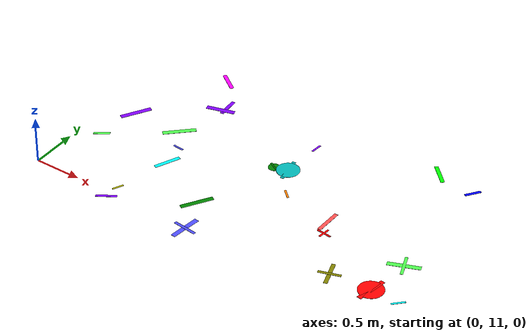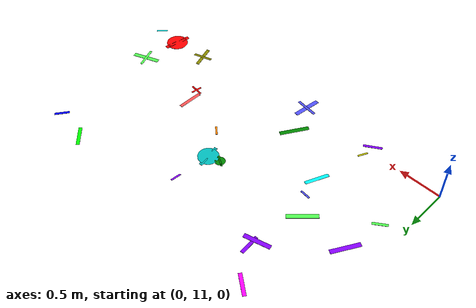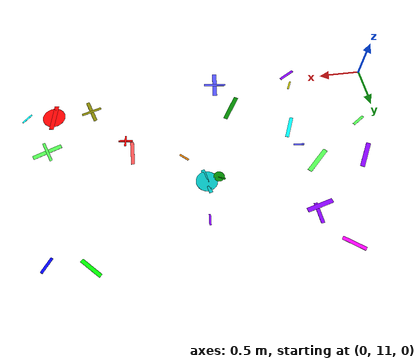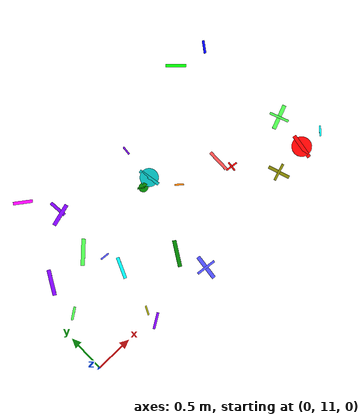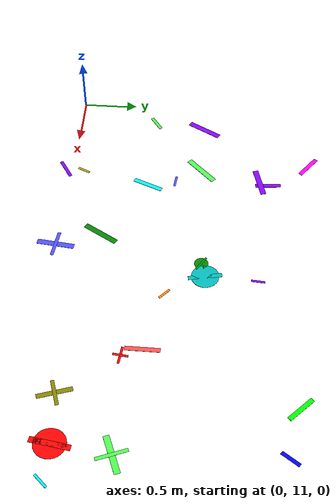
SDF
<sdf version="1.6">
 <world name="default">
  <model name="letter_R_1184">
   <static>true</static>
   <pose>0.23 11.72 0.005 0 0 3.740</pose>
   <link name="link">
    <visual name="visual">
     <geometry><box><size>0.17 0.03 0.002</size></box></geometry>
     <material>
      <ambient>0.3 1.0 0.3 1</ambient>
      <diffuse>0.3 1.0 0.3 1</diffuse>
      <specular>0.1 0.1 0.1 1</specular>
     </material>
    </visual>
   </link>
  </model>
  <model name="letter_K_1185">
   <static>true</static>
   <pose>0.30 12.19 0.012 0 0 1.046</pose>
   <link name="link">
    <visual name="visual">
     <geometry><box><size>0.33 0.05 0.002</size></box></geometry>
     <material>
      <ambient>0.5 0.0 1.0 1</ambient>
      <diffuse>0.5 0.0 1.0 1</diffuse>
      <specular>0.1 0.1 0.1 1</specular>
     </material>
    </visual>
   </link>
  </model>
  <model name="letter_S_1237">
   <static>true</static>
   <pose>0.91 10.93 0.006 0 0 0.553</pose>
   <link name="link">
    <visual name="visual">
     <geometry><box><size>0.21 0.03 0.002</size></box></geometry>
     <material>
      <ambient>0.5 0.0 1.0 1</ambient>
      <diffuse>0.5 0.0 1.0 1</diffuse>
      <specular>0.1 0.1 0.1 1</specular>
     </material>
    </visual>
   </link>
  </model>
  <model name="letter_B_1239">
   <static>true</static>
   <pose>0.92 11.10 0.012 0 0 4.268</pose>
   <link name="link">
    <visual name="visual">
     <geometry><box><size>0.12 0.02 0.002</size></box></geometry>
     <material>
      <ambient>0.7 0.7 0.0 1</ambient>
      <diffuse>0.7 0.7 0.0 1</diffuse>
      <specular>0.1 0.1 0.1 1</specular>
     </material>
    </visual>
   </link>
  </model>
  <model name="letter_Y_1240">
   <static>true</static>
   <pose>1.06 11.71 0.004 0 0 1.162</pose>
   <link name="link">
    <visual name="visual">
     <geometry><box><size>0.28 0.04 0.002</size></box></geometry>
     <material>
      <ambient>0.0 1.0 1.0 1</ambient>
      <diffuse>0.0 1.0 1.0 1</diffuse>
      <specular>0.1 0.1 0.1 1</specular>
     </material>
    </visual>
   </link>
  </model>
  <model name="letter_W_1241">
   <static>true</static>
   <pose>0.85 12.19 0.008 0 0 0.771</pose>
   <link name="link">
    <visual name="visual">
     <geometry><box><size>0.34 0.05 0.002</size></box></geometry>
     <material>
      <ambient>0.3 1.0 0.3 1</ambient>
      <diffuse>0.3 1.0 0.3 1</diffuse>
      <specular>0.1 0.1 0.1 1</specular>
     </material>
    </visual>
   </link>
  </model>
  <model name="letter_W_1242">
   <static>true</static>
   <pose>1.01 11.96 0.012 0 0 3.045</pose>
   <link name="link">
    <visual name="visual">
     <geometry><box><size>0.12 0.02 0.002</size></box></geometry>
     <material>
      <ambient>0.3 0.3 1.0 1</ambient>
      <diffuse>0.3 0.3 1.0 1</diffuse>
      <specular>0.1 0.1 0.1 1</specular>
     </material>
    </visual>
   </link>
  </model>
  <model name="letter_U_1243">
   <static>true</static>
   <pose>0.74 13.18 0.011 0 0 5.647</pose>
   <link name="link">
    <visual name="visual">
     <geometry><box><size>0.25 0.04 0.002</size></box></geometry>
     <material>
      <ambient>1.0 0.0 1.0 1</ambient>
      <diffuse>1.0 0.0 1.0 1</diffuse>
      <specular>0.1 0.1 0.1 1</specular>
     </material>
    </visual>
   </link>
  </model>
  <model name="letter_R_1244">
   <static>true</static>
   <pose>1.00 12.81 0.003 0 0 1.650</pose>
   <link name="link">
    <visual name="visual">
     <geometry><box><size>0.23 0.04 0.002</size></box></geometry>
     <material>
      <ambient>0.5 0.0 1.0 1</ambient>
      <diffuse>0.5 0.0 1.0 1</diffuse>
      <specular>0.1 0.1 0.1 1</specular>
     </material>
    </visual>
   </link>
  </model>
  <model name="letter_B_1245">
   <static>true</static>
   <pose>0.97 12.73 0.010 0 0 3.407</pose>
   <link name="link">
    <visual name="visual">
     <geometry><box><size>0.30 0.05 0.002</size></box></geometry>
     <material>
      <ambient>0.5 0.0 1.0 1</ambient>
      <diffuse>0.5 0.0 1.0 1</diffuse>
      <specular>0.1 0.1 0.1 1</specular>
     </material>
    </visual>
   </link>
  </model>
  <model name="letter_H_1302">
   <static>true</static>
   <pose>1.83 10.97 0.004 0 0 1.450</pose>
   <link name="link">
    <visual name="visual">
     <geometry><box><size>0.33 0.05 0.002</size></box></geometry>
     <material>
      <ambient>0.3 0.3 1.0 1</ambient>
      <diffuse>0.3 0.3 1.0 1</diffuse>
      <specular>0.1 0.1 0.1 1</specular>
     </material>
    </visual>
    <visual name="visual2">
     <pose>0 0 0.001 0 0 1.57</pose>
     <geometry><box><size>0.26 0.03 0.001</size></box></geometry>
     <material><ambient>0.3 0.3 1.0 1</ambient><diffuse>0.3 0.3 1.0 1</diffuse></material>
    </visual>
   </link>
  </model>
  <model name="letter_U_1303">
   <static>true</static>
   <pose>1.69 11.35 0.009 0 0 4.161</pose>
   <link name="link">
    <visual name="visual">
     <geometry><box><size>0.34 0.05 0.002</size></box></geometry>
     <material>
      <ambient>0.0 0.5 0.0 1</ambient>
      <diffuse>0.0 0.5 0.0 1</diffuse>
      <specular>0.1 0.1 0.1 1</specular>
     </material>
    </visual>
   </link>
  </model>
  <model name="letter_Q_1304">
   <static>true</static>
   <pose>2.11 12.29 0.006 0 0 1.752</pose>
   <link name="link">
    <visual name="visual">
     <geometry><box><size>0.29 0.04 0.002</size></box></geometry>
     <material>
      <ambient>0.0 0.7 0.7 1</ambient>
      <diffuse>0.0 0.7 0.7 1</diffuse>
      <specular>0.1 0.1 0.1 1</specular>
     </material>
    </visual>
    <visual name="visual2">
     <geometry><cylinder><radius>0.12</radius><length>0.002</length></cylinder></geometry>
     <material><ambient>0.0 0.7 0.7 1</ambient><diffuse>0.0 0.7 0.7 1</diffuse></material>
    </visual>
   </link>
  </model>
  <model name="letter_O_1305">
   <static>true</static>
   <pose>1.97 12.25 0.006 0 0 5.721</pose>
   <link name="link">
    <visual name="visual">
     <geometry><box><size>0.15 0.02 0.002</size></box></geometry>
     <material>
      <ambient>0.0 0.5 0.0 1</ambient>
      <diffuse>0.0 0.5 0.0 1</diffuse>
      <specular>0.1 0.1 0.1 1</specular>
     </material>
    </visual>
    <visual name="visual2">
     <geometry><cylinder><radius>0.06</radius><length>0.002</length></cylinder></geometry>
     <material><ambient>0.0 0.5 0.0 1</ambient><diffuse>0.0 0.5 0.0 1</diffuse></material>
    </visual>
   </link>
  </model>
  <model name="letter_K_1306">
   <static>true</static>
   <pose>2.32 11.96 0.009 0 0 2.410</pose>
   <link name="link">
    <visual name="visual">
     <geometry><box><size>0.12 0.02 0.002</size></box></geometry>
     <material>
      <ambient>1.0 0.5 0.0 1</ambient>
      <diffuse>1.0 0.5 0.0 1</diffuse>
      <specular>0.1 0.1 0.1 1</specular>
     </material>
    </visual>
   </link>
  </model>
  <model name="letter_P_1307">
   <static>true</static>
   <pose>2.14 12.74 0.013 0 0 1.482</pose>
   <link name="link">
    <visual name="visual">
     <geometry><box><size>0.12 0.02 0.002</size></box></geometry>
     <material>
      <ambient>0.5 0.0 1.0 1</ambient>
      <diffuse>0.5 0.0 1.0 1</diffuse>
      <specular>0.1 0.1 0.1 1</specular>
     </material>
    </visual>
   </link>
  </model>
  <model name="letter_L_1375">
   <static>true</static>
   <pose>3.34 11.19 0.009 0 0 1.886</pose>
   <link name="link">
    <visual name="visual">
     <geometry><box><size>0.29 0.04 0.002</size></box></geometry>
     <material>
      <ambient>0.5 0.5 0.0 1</ambient>
      <diffuse>0.5 0.5 0.0 1</diffuse>
      <specular>0.1 0.1 0.1 1</specular>
     </material>
    </visual>
    <visual name="visual2">
     <pose>0 0 0.001 0 0 1.57</pose>
     <geometry><box><size>0.23 0.03 0.001</size></box></geometry>
     <material><ambient>0.5 0.5 0.0 1</ambient><diffuse>0.5 0.5 0.0 1</diffuse></material>
    </visual>
   </link>
  </model>
  <model name="letter_Z_1376">
   <static>true</static>
   <pose>2.89 11.83 0.008 0 0 4.696</pose>
   <link name="link">
    <visual name="visual">
     <geometry><box><size>0.29 0.04 0.002</size></box></geometry>
     <material>
      <ambient>1.0 0.3 0.3 1</ambient>
      <diffuse>1.0 0.3 0.3 1</diffuse>
      <specular>0.1 0.1 0.1 1</specular>
     </material>
    </visual>
   </link>
  </model>
  <model name="letter_L_1377">
   <static>true</static>
   <pose>2.96 11.66 0.010 0 0 3.016</pose>
   <link name="link">
    <visual name="visual">
     <geometry><box><size>0.16 0.02 0.002</size></box></geometry>
     <material>
      <ambient>1.0 0.0 0.0 1</ambient>
      <diffuse>1.0 0.0 0.0 1</diffuse>
      <specular>0.1 0.1 0.1 1</specular>
     </material>
    </visual>
    <visual name="visual2">
     <pose>0 0 0.001 0 0 1.57</pose>
     <geometry><box><size>0.13 0.02 0.001</size></box></geometry>
     <material><ambient>1.0 0.0 0.0 1</ambient><diffuse>1.0 0.0 0.0 1</diffuse></material>
    </visual>
   </link>
  </model>
  <model name="letter_K_1378">
   <static>true</static>
   <pose>3.36 13.09 0.005 0 0 2.369</pose>
   <link name="link">
    <visual name="visual">
     <geometry><box><size>0.26 0.04 0.002</size></box></geometry>
     <material>
      <ambient>0.0 1.0 0.0 1</ambient>
      <diffuse>0.0 1.0 0.0 1</diffuse>
      <specular>0.1 0.1 0.1 1</specular>
     </material>
    </visual>
   </link>
  </model>
  <model name="letter_Q_1448">
   <static>true</static>
   <pose>3.78 11.22 0.006 0 0 1.406</pose>
   <link name="link">
    <visual name="visual">
     <geometry><box><size>0.33 0.05 0.002</size></box></geometry>
     <material>
      <ambient>1.0 0.0 0.0 1</ambient>
      <diffuse>1.0 0.0 0.0 1</diffuse>
      <specular>0.1 0.1 0.1 1</specular>
     </material>
    </visual>
    <visual name="visual2">
     <geometry><cylinder><radius>0.13</radius><length>0.002</length></cylinder></geometry>
     <material><ambient>1.0 0.0 0.0 1</ambient><diffuse>1.0 0.0 0.0 1</diffuse></material>
    </visual>
   </link>
  </model>
  <model name="letter_R_1449">
   <static>true</static>
   <pose>4.09 11.20 0.012 0 0 0.806</pose>
   <link name="link">
    <visual name="visual">
     <geometry><box><size>0.14 0.02 0.002</size></box></geometry>
     <material>
      <ambient>0.0 1.0 1.0 1</ambient>
      <diffuse>0.0 1.0 1.0 1</diffuse>
      <specular>0.1 0.1 0.1 1</specular>
     </material>
    </visual>
   </link>
  </model>
  <model name="letter_A_1452">
   <static>true</static>
   <pose>3.84 11.69 0.006 0 0 3.514</pose>
   <link name="link">
    <visual name="visual">
     <geometry><box><size>0.33 0.05 0.002</size></box></geometry>
     <material>
      <ambient>0.3 1.0 0.3 1</ambient>
      <diffuse>0.3 1.0 0.3 1</diffuse>
      <specular>0.1 0.1 0.1 1</specular>
     </material>
    </visual>
    <visual name="visual2">
     <pose>0 0 0.001 0 0 1.57</pose>
     <geometry><box><size>0.26 0.03 0.001</size></box></geometry>
     <material><ambient>0.3 1.0 0.3 1</ambient><diffuse>0.3 1.0 0.3 1</diffuse></material>
    </visual>
   </link>
  </model>
  <model name="letter_B_1454">
   <static>true</static>
   <pose>3.79 13.01 0.010 0 0 0.951</pose>
   <link name="link">
    <visual name="visual">
     <geometry><box><size>0.17 0.03 0.002</size></box></geometry>
     <material>
      <ambient>0.0 0.0 1.0 1</ambient>
      <diffuse>0.0 0.0 1.0 1</diffuse>
      <specular>0.1 0.1 0.1 1</specular>
     </material>
    </visual>
   </link>
  </model>
 </world>
</sdf>
